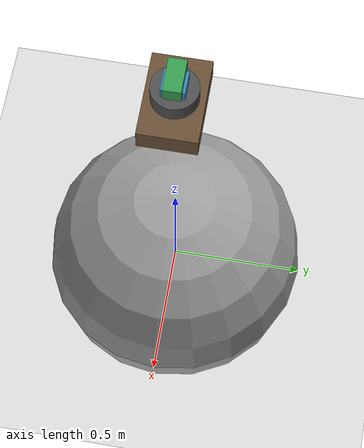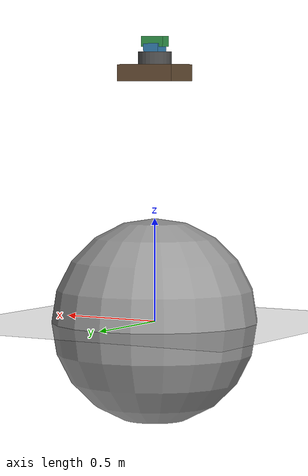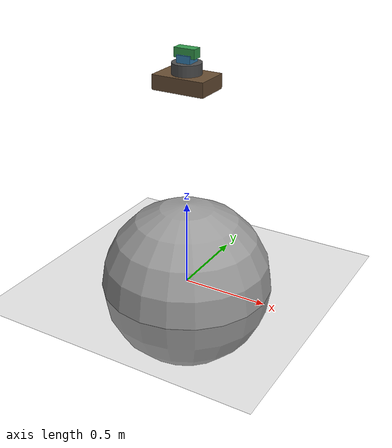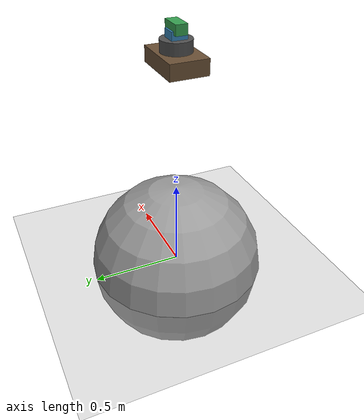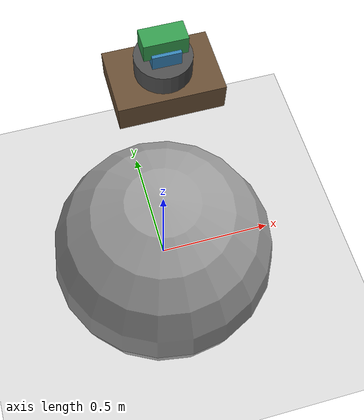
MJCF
<mujoco model="rws_gimbal_2dof_moving_base">

  <option timestep="0.002" gravity="0 0 -9.81" integrator="implicit"/>

  <visual>
    <global offwidth="1280" offheight="720"/>
  </visual>

  <compiler angle="degree"/>

  <default>
    <joint damping="0.5" armature="0.01"/>
    <geom rgba="0.6 0.6 0.6 1"/>
  </default>

  <asset>
    <texture name="grid" type="2d" builtin="checker"
             rgb1="0.3 0.3 0.3" rgb2="0.4 0.4 0.4"
             width="512" height="512"/>
    <material name="grid_mat" texture="grid" texrepeat="8 8" reflectance="0.1"/>
    <material name="target_mat" rgba="0.9 0.2 0.1 1" reflectance="0.3"/>
  </asset>

  <worldbody>
    <!-- Ground plane -->
    <geom type="plane" size="20 20 0.1" material="grid_mat"/>

    <light pos="0 0 8" dir="0 0 -1" diffuse="0.8 0.8 0.8" castshadow="true"/>
    <light pos="5 5 6" dir="-1 -1 -1" diffuse="0.5 0.5 0.5"/>

    <!-- ============= Moving Base (Robot Dog Body) ============= -->
    <!-- Roll around X, then pitch around Y, then yaw around Z -->
    <body name="base_platform" pos="0 0 1.2">
      <inertial pos="0 0 0" mass="1.0" diaginertia="0.01 0.01 0.01"/>
      <joint name="base_roll" type="hinge" axis="1 0 0"
             range="-30 30" damping="2" armature="0.02"/>
      <body name="base_pitch_body">
        <inertial pos="0 0 0" mass="1.0" diaginertia="0.01 0.01 0.01"/>
        <joint name="base_pitch" type="hinge" axis="0 1 0"
               range="-30 30" damping="2" armature="0.02"/>
        <body name="base_yaw_body">
          <joint name="base_yaw" type="hinge" axis="0 0 1"
                 range="-30 30" damping="2" armature="0.02"/>
          <geom type="box" size="0.15 0.1 0.04" rgba="0.4 0.3 0.2 1"/>

          <!-- ============= Gimbal Assembly (mounted on dog body) ============= -->
          <body name="base_link" pos="0 0 0.05">
            <geom type="cylinder" size="0.08 0.05" rgba="0.3 0.3 0.3 1"/>

            <!-- Yaw joint: rotates around Z (vertical) -->
            <body name="yaw_link" pos="0 0 0.06">
              <joint name="yaw_joint" type="hinge" axis="0 0 1"
                     range="-160 160" damping="0.8" armature="0.02"/>
              <geom type="box" size="0.04 0.04 0.03" rgba="0.2 0.5 0.7 1"/>

              <!-- Pitch joint: rotates around Y (lateral) -->
              <body name="pitch_link" pos="0 0 0.04">
                <joint name="pitch_joint" type="hinge" axis="0 1 0"
                       range="-45 75" damping="0.6" armature="0.015"/>
                <geom type="box" size="0.06 0.03 0.025" rgba="0.2 0.6 0.3 1"/>

                <!-- Camera sensor: looks along +X of pitch_link -->
                <camera name="gimbal_cam" pos="0.07 0 0" xyaxes="0 -1 0 0 0 1"
                        fovy="41" resolution="1280 720"/>
              </body>
            </body>
          </body>
        </body>
      </body>
    </body>

    <!-- ============= Target Object ============= -->
    <body name="target" pos="0 0 0" gravcomp="1">
      <joint name="target_x" type="slide" axis="1 0 0" damping="0"/>
      <joint name="target_y" type="slide" axis="0 1 0" damping="0"/>
      <joint name="target_z" type="slide" axis="0 0 1" damping="0"/>
      <geom name="target_geom" type="sphere" size="0.5"
            material="target_mat" mass="1.0"/>
    </body>
  </worldbody>

  <!-- Actuators -->
  <actuator>
    <!-- Gimbal velocity-controlled -->
    <velocity name="yaw_motor" joint="yaw_joint" kv="50"
              ctrlrange="-240 240" forcerange="-20 20"/>
    <velocity name="pitch_motor" joint="pitch_joint" kv="50"
              ctrlrange="-240 240" forcerange="-20 20"/>

    <!-- Base position-controlled (driven by env to simulate gait) -->
    <!-- High kp for tight tracking of sinusoidal commands -->
    <position name="base_roll_motor"  joint="base_roll"  kp="2000" ctrlrange="-30 30"/>
    <position name="base_pitch_motor" joint="base_pitch" kp="2000" ctrlrange="-30 30"/>
    <position name="base_yaw_motor"   joint="base_yaw"   kp="2000" ctrlrange="-30 30"/>
  </actuator>

  <!-- Sensors for reading joint state -->
  <sensor>
    <jointpos name="yaw_pos" joint="yaw_joint"/>
    <jointpos name="pitch_pos" joint="pitch_joint"/>
    <jointvel name="yaw_vel" joint="yaw_joint"/>
    <jointvel name="pitch_vel" joint="pitch_joint"/>
    <!-- Base sensors -->
    <jointpos name="base_roll_pos"  joint="base_roll"/>
    <jointpos name="base_pitch_pos" joint="base_pitch"/>
    <jointpos name="base_yaw_pos"   joint="base_yaw"/>
    <jointvel name="base_roll_vel"  joint="base_roll"/>
    <jointvel name="base_pitch_vel" joint="base_pitch"/>
    <jointvel name="base_yaw_vel"   joint="base_yaw"/>
  </sensor>

</mujoco>
